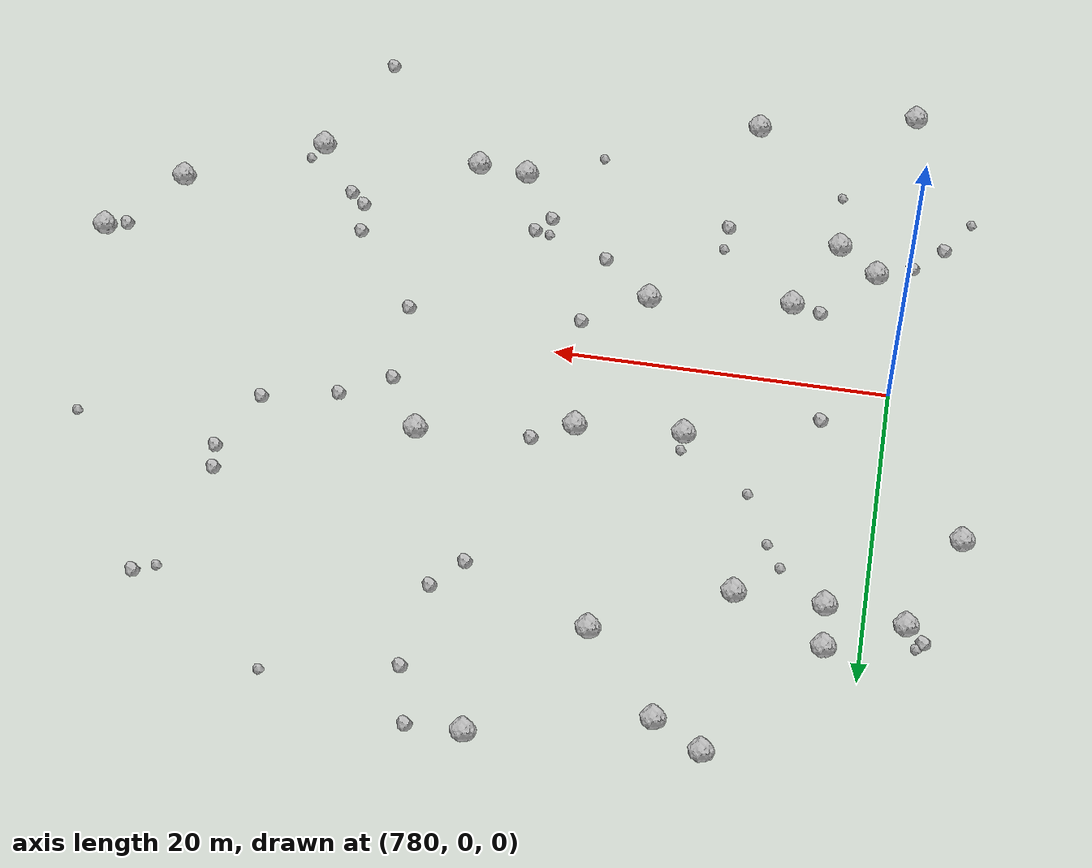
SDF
<sdf version="1.6">
 <world name="default">
  <include><uri>model://sun</uri></include>
  <model name="rock1_20_4">
   <include><uri>model://rock1</uri><pose>775.0131798856066 9.952519208281174 0.5 0 0 0</pose></include>
  </model>
  <model name="rock1_20_5">
   <include><uri>model://rock1</uri><pose>780.2113952773226 -22.32261918358614 0.5 0 0 0</pose></include>
  </model>
  <model name="rock1_20_6">
   <include><uri>model://rock1</uri><pose>786.3579594557125 -5.734821444944412 0.5 0 0 0</pose></include>
  </model>
  <model name="rock1_20_7">
   <include><uri>model://rock1</uri><pose>794.9831770039234 19.1910589604504 0.5 0 0 0</pose></include>
  </model>
  <model name="rock1_20_8">
   <include><uri>model://rock1</uri><pose>807.0437648670403 7.21021414052786 0.5 0 0 0</pose></include>
  </model>
  <model name="rock1_20_9">
   <include><uri>model://rock1</uri><pose>829.0162860833778 -5.094100662087943 0.5 0 0 0</pose></include>
  </model>
  <model name="rock1_20_10">
   <include><uri>model://rock1</uri><pose>807.0281813916721 -13.848981945540832 0.5 0 0 0</pose></include>
  </model>
  <model name="rock1_20_11">
   <include><uri>model://rock1</uri><pose>789.9723202236725 -19.942246723837297 0.5 0 0 0</pose></include>
  </model>
  <model name="rock1_20_12">
   <include><uri>model://rock1</uri><pose>817.0308771118487 -13.939262896556816 0.5 0 0 0</pose></include>
  </model>
  <model name="rock1_20_13">
   <include><uri>model://rock1</uri><pose>777.6709733257359 16.173988856805956 0.5 0 0 0</pose></include>
  </model>
  <model name="rock1_20_14">
   <include><uri>model://rock1</uri><pose>787.8248298107754 25.92421520991423 0.5 0 0 0</pose></include>
  </model>
  <model name="rock1_20_15">
   <include><uri>model://rock1</uri><pose>791.5458720260187 5.004019357676363 0.5 0 0 0</pose></include>
  </model>
  <model name="rock1_20_16">
   <include><uri>model://rock1</uri><pose>790.6351615395133 24.346946336905724 0.5 0 0 0</pose></include>
  </model>
  <model name="rock1_20_17">
   <include><uri>model://rock1</uri><pose>782.0512111753411 18.28612222563296 0.5 0 0 0</pose></include>
  </model>
  <model name="rock1_20_18">
   <include><uri>model://rock1</uri><pose>825.1641637245414 -9.869737362208745 0.5 0 0 0</pose></include>
  </model>
  <model name="rock1_20_19">
   <include><uri>model://rock1</uri><pose>787.3453035227038 15.504525933661341 0.5 0 0 0</pose></include>
  </model>
  <model name="rock1_20_20">
   <include><uri>model://rock1</uri><pose>800.6003894991152 26.79312140849948 0.5 0 0 0</pose></include>
  </model>
  <model name="rock1_20_21">
   <include><uri>model://rock1</uri><pose>794.9620646510184 -4.819906077270655 0.5 0 0 0</pose></include>
  </model>
  <model name="rock1_20_22">
   <include><uri>model://rock1</uri><pose>803.9530495249732 -13.577291246442353 0.5 0 0 0</pose></include>
  </model>
  <model name="rock1_20_23">
   <include><uri>model://rock1</uri><pose>797.8958034871023 5.462499888563961 0.5 0 0 0</pose></include>
  </model>
  <model name="rock1_20_24">
   <include><uri>model://rock1</uri><pose>783.9580079701975 -10.81225238332149 0.5 0 0 0</pose></include>
  </model>
  <model name="rock1_20_25">
   <include><uri>model://rock1</uri><pose>781.5369618515124 -8.915735611582583 0.5 0 0 0</pose></include>
  </model>
  <model name="rock1_20_26">
   <include><uri>model://rock1</uri><pose>782.2394334025709 15.535426043708767 0.5 0 0 0</pose></include>
  </model>
  <model name="rock2_20_0">
   <include><uri>model://rock2</uri><pose>801.7787990235283 -10.198232162999268 0.3 0 0 0</pose></include>
  </model>
  <model name="rock2_20_1">
   <include><uri>model://rock2</uri><pose>818.2830337139668 10.262381538777042 0.3 0 0 0</pose></include>
  </model>
  <model name="rock2_20_2">
   <include><uri>model://rock2</uri><pose>813.2756244702282 -7.288620212676133 0.3 0 0 0</pose></include>
  </model>
  <model name="rock2_20_3">
   <include><uri>model://rock2</uri><pose>803.80076374675 26.80633854254402 0.3 0 0 0</pose></include>
  </model>
  <model name="rock2_20_4">
   <include><uri>model://rock2</uri><pose>797.9976676399049 -7.480161574556483 0.3 0 0 0</pose></include>
  </model>
  <model name="rock2_20_5">
   <include><uri>model://rock2</uri><pose>804.7592309160409 23.246377185476085 0.3 0 0 0</pose></include>
  </model>
  <model name="rock2_20_6">
   <include><uri>model://rock2</uri><pose>802.6660691026466 -9.083340391966367 0.3 0 0 0</pose></include>
  </model>
  <model name="rock2_20_7">
   <include><uri>model://rock2</uri><pose>784.6219987151535 -5.3843147653883925 0.3 0 0 0</pose></include>
  </model>
  <model name="rock2_20_8">
   <include><uri>model://rock2</uri><pose>811.9968062651784 5.342624248583284 0.3 0 0 0</pose></include>
  </model>
  <model name="rock2_20_9">
   <include><uri>model://rock2</uri><pose>804.1558500783367 17.786940987991784 0.3 0 0 0</pose></include>
  </model>
  <model name="rock2_20_10">
   <include><uri>model://rock2</uri><pose>800.291335884846 6.710439292204882 0.3 0 0 0</pose></include>
  </model>
  <model name="rock2_20_11">
   <include><uri>model://rock2</uri><pose>798.7521234554124 -2.4115694628836906 0.3 0 0 0</pose></include>
  </model>
  <model name="rock2_20_12">
   <include><uri>model://rock2</uri><pose>814.479693902693 -10.29656620321559 0.3 0 0 0</pose></include>
  </model>
  <model name="rock2_20_13">
   <include><uri>model://rock2</uri><pose>779.4172647842679 -9.793055280542326 0.3 0 0 0</pose></include>
  </model>
  <model name="rock2_20_14">
   <include><uri>model://rock2</uri><pose>809.1750002514125 -1.742047172200639 0.3 0 0 0</pose></include>
  </model>
  <model name="rock2_20_15">
   <include><uri>model://rock2</uri><pose>783.7755559240848 2.678759689551974 0.3 0 0 0</pose></include>
  </model>
  <model name="rock2_20_16">
   <include><uri>model://rock2</uri><pose>809.0853883133893 3.677001766836746 0.3 0 0 0</pose></include>
  </model>
  <model name="rock2_20_17">
   <include><uri>model://rock2</uri><pose>813.5603354271209 -9.463282347398959 0.3 0 0 0</pose></include>
  </model>
  <model name="rock2_20_18">
   <include><uri>model://rock2</uri><pose>827.7027189527602 -5.527171483454602 0.3 0 0 0</pose></include>
  </model>
  <model name="rock2_20_19">
   <include><uri>model://rock2</uri><pose>814.053097303323 -21.519570112888154 0.3 0 0 0</pose></include>
  </model>
  <model name="rock2_20_20">
   <include><uri>model://rock2</uri><pose>777.6084522294649 -11.563570282744639 0.3 0 0 0</pose></include>
  </model>
  <model name="rock2_20_21">
   <include><uri>model://rock2</uri><pose>790.8921932332979 -11.29532710373671 0.3 0 0 0</pose></include>
  </model>
  <model name="rock2_20_22">
   <include><uri>model://rock2</uri><pose>818.0312446596554 11.819425385662377 0.3 0 0 0</pose></include>
  </model>
  <model name="rock2_20_23">
   <include><uri>model://rock2</uri><pose>820.8048953792241 19.52782374458414 0.3 0 0 0</pose></include>
  </model>
  <model name="rock2_20_24">
   <include><uri>model://rock2</uri><pose>816.4471057163896 6.322034515127527 0.3 0 0 0</pose></include>
  </model>
  <model name="rock2_20_25">
   <include><uri>model://rock2</uri><pose>776.6614229721191 17.098681072075507 0.3 0 0 0</pose></include>
  </model>
  <model name="rock2_20_26">
   <include><uri>model://rock2</uri><pose>802.492174688161 15.896027639938069 0.3 0 0 0</pose></include>
  </model>
  <model name="rock3_20_0">
   <include><uri>model://rock3</uri><pose>776.0659962395727 -14.040477261533725 0.2 0 0 0</pose></include>
  </model>
  <model name="rock3_20_1">
   <include><uri>model://rock3</uri><pose>812.3379888358921 24.652453306222725 0.2 0 0 0</pose></include>
  </model>
  <model name="rock3_20_2">
   <include><uri>model://rock3</uri><pose>787.3389475333246 8.565159959002806 0.2 0 0 0</pose></include>
  </model>
  <model name="rock3_20_3">
   <include><uri>model://rock3</uri><pose>826.8600429125538 9.004362100575186 0.2 0 0 0</pose></include>
  </model>
  <model name="rock3_20_4">
   <include><uri>model://rock3</uri><pose>819.5529294343291 18.91788242144456 0.2 0 0 0</pose></include>
  </model>
  <model name="rock3_20_5">
   <include><uri>model://rock3</uri><pose>784.9386423495263 13.340952083100667 0.2 0 0 0</pose></include>
  </model>
  <model name="rock3_20_6">
   <include><uri>model://rock3</uri><pose>790.9473361129683 -9.594728120960802 0.2 0 0 0</pose></include>
  </model>
  <model name="rock3_20_7">
   <include><uri>model://rock3</uri><pose>791.5413666283318 6.079353404783973 0.2 0 0 0</pose></include>
  </model>
  <model name="rock3_20_8">
   <include><uri>model://rock3</uri><pose>801.7255461484198 -8.981026404424842 0.2 0 0 0</pose></include>
  </model>
  <model name="rock3_20_9">
   <include><uri>model://rock3</uri><pose>808.9910059051496 3.571326983612906 0.2 0 0 0</pose></include>
  </model>
  <model name="rock3_20_10">
   <include><uri>model://rock3</uri><pose>817.6255729852473 -12.860079630792598 0.2 0 0 0</pose></include>
  </model>
  <model name="rock3_20_11">
   <include><uri>model://rock3</uri><pose>776.9953652145265 17.463051202278976 0.2 0 0 0</pose></include>
  </model>
  <model name="rock3_20_12">
   <include><uri>model://rock3</uri><pose>799.3154994649364 -15.805253878408207 0.2 0 0 0</pose></include>
  </model>
  <model name="rock3_20_13">
   <include><uri>model://rock3</uri><pose>785.8325419111803 11.86870965869295 0.2 0 0 0</pose></include>
  </model>
  <model name="rock3_20_14">
   <include><uri>model://rock3</uri><pose>784.1475021511021 -14.962896742598527 0.2 0 0 0</pose></include>
  </model>
 </world>
</sdf>
